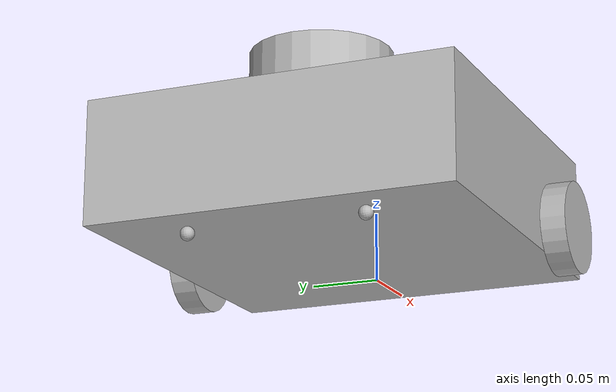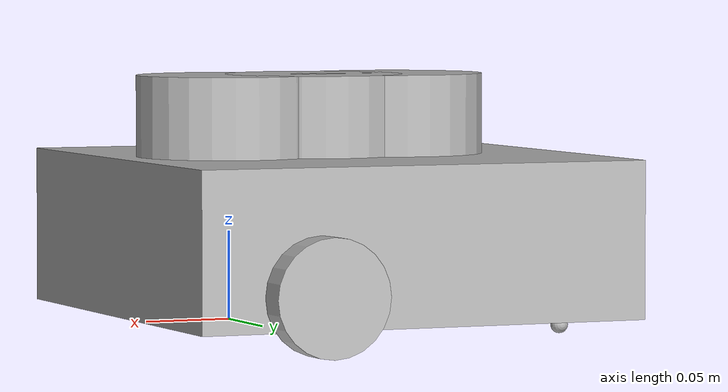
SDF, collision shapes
<?xml version="1.0" ?>
<sdf version="1.5">
  <model name="turtlebot3_waffle">
  <pose>0.0 0.0 0.0 0.0 0.0 0.0</pose>

    <link name="base_footprint"/>

    <link name="base_link">

      <inertial>
        <pose>-0.064 0 0.048 0 0 0</pose>
        <inertia>
          <ixx>4.2111447e-02</ixx>
          <ixy>0</ixy>
          <ixz>0</ixz>
          <iyy>4.2111447e-02</iyy>
          <iyz>0</iyz>
          <izz>7.5254874e-02</izz>
        </inertia>
        <mass>1.3729096e+00</mass>
      </inertial>

      <collision name="base_collision">
        <pose>-0.064 0 0.048 0 0 0</pose>
        <geometry>
          <box>
            <size>0.265 0.265 0.089</size>
          </box>
        </geometry>
      </collision>

      <visual name="base_visual">
        <pose>-0.064 0 0 0 0 0</pose>
        <geometry>
          <mesh>
            <uri>model://turtlebot3_common/meshes/waffle_base.dae</uri>
            <scale>0.001 0.001 0.001</scale>
          </mesh>
        </geometry>
      </visual>
    </link>

    <link name="imu_link">
      <sensor name="tb3_imu" type="imu">
        <always_on>true</always_on>
        <update_rate>200</update_rate>
        <imu>
          <angular_velocity>
            <x>
              <noise type="gaussian">
                <mean>0.0</mean>
                <stddev>2e-4</stddev>
              </noise>
            </x>
            <y>
              <noise type="gaussian">
                <mean>0.0</mean>
                <stddev>2e-4</stddev>
              </noise>
            </y>
            <z>
              <noise type="gaussian">
                <mean>0.0</mean>
                <stddev>2e-4</stddev>
              </noise>
            </z>
          </angular_velocity>
          <linear_acceleration>
            <x>
              <noise type="gaussian">
                <mean>0.0</mean>
                <stddev>1.7e-2</stddev>
              </noise>
            </x>
            <y>
              <noise type="gaussian">
                <mean>0.0</mean>
                <stddev>1.7e-2</stddev>
              </noise>
            </y>
            <z>
              <noise type="gaussian">
                <mean>0.0</mean>
                <stddev>1.7e-2</stddev>
              </noise>
            </z>
          </linear_acceleration>
        </imu>
        <plugin name="turtlebot3_imu" filename="libgazebo_ros_imu_sensor.so">
          <ros>
            <remapping>~/out:=imu</remapping>
          </ros>
        </plugin>
      </sensor>
    </link>

    <link name="base_scan">
      <inertial>
        <pose>-0.052 0 0.111 0 0 0</pose>
        <inertia>
          <ixx>0.001</ixx>
          <ixy>0.000</ixy>
          <ixz>0.000</ixz>
          <iyy>0.001</iyy>
          <iyz>0.000</iyz>
          <izz>0.001</izz>
        </inertia>
        <mass>0.114</mass>
      </inertial>

      <collision name="lidar_sensor_collision">
        <pose>-0.052 0 0.111 0 0 0</pose>
        <geometry>
          <cylinder>
            <radius>0.0508</radius>
            <length>0.055</length>
          </cylinder>
        </geometry>
      </collision>
    </link>

    <link name="base_scan_front">
        <inertial>
            <pose>0.002 0 0.111 0 0 0</pose>
            <inertia>
                <ixx>0.001</ixx>
                <ixy>0.000</ixy>
                <ixz>0.000</ixz>
                <iyy>0.001</iyy>
                <iyz>0.000</iyz>
                <izz>0.001</izz>
            </inertia>
            <mass>0.114</mass>
        </inertial>

        <collision name="lidar_sensor_collision_front">
            <pose>0.002 0 0.111 0 0 0</pose>
            <geometry>
                <cylinder>
                    <radius>0.0508</radius>
                    <length>0.055</length>
                </cylinder>
            </geometry>
        </collision>

        <visual name="lidar_sensor_visual_front">
            <pose>-0.014 0 0.121 0 0 0</pose>
            <geometry>
                <mesh>
                    <uri>model://turtlebot3_common/meshes/lds.dae</uri>
                    <scale>0.001 0.001 0.001</scale>
                </mesh>
            </geometry>
        </visual>

        <sensor name="hls_lfcd_lds_front" type="ray">
            <always_on>true</always_on>
            <visualize>false</visualize>
            <pose>-0.014 0 0.121 0 0 0</pose>
            <update_rate>5</update_rate>
            <ray>
                <scan>
                    <horizontal>
                        <samples>360</samples>
                        <resolution>1.000000</resolution>
                        <min_angle>0.000000</min_angle>
                        <max_angle>6.280000</max_angle>
                    </horizontal>
                </scan>
                <range>
                    <min>0.120000</min>
                    <max>10.0</max>
                    <resolution>0.015000</resolution>
                </range>
                <noise>
                    <type>gaussian</type>
                    <mean>0.0</mean>
                    <stddev>0.01</stddev>
                </noise>
            </ray>
            <plugin name="turtlebot3_laserscan_front" filename="libgazebo_ros_ray_sensor.so">
                <ros>
                    <remapping>~/out:=scan_front</remapping>
                </ros>
                <output_type>sensor_msgs/LaserScan</output_type>
                <frame_name>base_scan_front</frame_name>
            </plugin>
        </sensor>
    </link>

    <link name="base_scan_back">
        <inertial>
            <pose>-0.102 0 0.111 0 0 3.141592</pose>
            <inertia>
                <ixx>0.001</ixx>
                <ixy>0.000</ixy>
                <ixz>0.000</ixz>
                <iyy>0.001</iyy>
                <iyz>0.000</iyz>
                <izz>0.001</izz>
            </inertia>
            <mass>0.114</mass>
        </inertial>

        <collision name="lidar_sensor_collision_back">
            <pose>-0.102 0 0.111 0 0 3.141592</pose>
            <geometry>
                <cylinder>
                    <radius>0.0508</radius>
                    <length>0.055</length>
                </cylinder>
            </geometry>
        </collision>

        <visual name="lidar_sensor_visual_back">
            <pose>-0.114 0 0.121 0 0 3.141592</pose>
            <geometry>
                <mesh>
                    <uri>model://turtlebot3_common/meshes/lds.dae</uri>
                    <scale>0.001 0.001 0.001</scale>
                </mesh>
            </geometry>
        </visual>

        <sensor name="hls_lfcd_lds_back" type="ray">
            <always_on>true</always_on>
            <visualize>false</visualize>
            <pose>-0.114 0 0.121 0 0 3.141592</pose>
            <update_rate>5</update_rate>
            <ray>
                <scan>
                    <horizontal>
                        <samples>360</samples>
                        <resolution>1.000000</resolution>
                        <min_angle>0.000000</min_angle>
                        <max_angle>6.280000</max_angle>
                    </horizontal>
                </scan>
                <range>
                    <min>0.120000</min>
                    <max>10.0</max>
                    <resolution>0.015000</resolution>
                </range>
                <noise>
                    <type>gaussian</type>
                    <mean>0.0</mean>
                    <stddev>0.01</stddev>
                </noise>
            </ray>
            <plugin name="turtlebot3_laserscan_back" filename="libgazebo_ros_ray_sensor.so">
                <ros>
                    <remapping>~/out:=scan_back</remapping>
                </ros>
                <output_type>sensor_msgs/LaserScan</output_type>
                <frame_name>base_scan_back</frame_name>
            </plugin>
        </sensor>
    </link>

    <link name="wheel_left_link">

      <inertial>
        <pose>0.0 0.144 0.023 -1.57 0 0</pose>
        <inertia>
          <ixx>1.1175580e-05</ixx>
          <ixy>-4.2369783e-11</ixy>
          <ixz>-5.9381719e-09</ixz>
          <iyy>1.1192413e-05</iyy>
          <iyz>-1.4400107e-11</iyz>
          <izz>2.0712558e-05</izz>
        </inertia>
        <mass>0.1</mass>
      </inertial>

      <collision name="wheel_left_collision">
        <pose>0.0 0.144 0.023 -1.57 0 0</pose>
        <geometry>
          <cylinder>
            <radius>0.033</radius>
            <length>0.018</length>
          </cylinder>
        </geometry>
        <surface>
          <!-- This friction pamareter don't contain reliable data!! -->
          <friction>
            <ode>
              <mu>100000.0</mu>
              <mu2>100000.0</mu2>
              <fdir1>0 0 0</fdir1>
              <slip1>0.0</slip1>
              <slip2>0.0</slip2>
            </ode>
          </friction>
          <contact>
            <ode>
              <soft_cfm>0</soft_cfm>
              <soft_erp>0.2</soft_erp>
              <kp>1e+5</kp>
              <kd>1</kd>
              <max_vel>0.01</max_vel>
              <min_depth>0.001</min_depth>
            </ode>
          </contact>
        </surface>
      </collision>

      <visual name="wheel_left_visual">
        <pose>0.0 0.144 0.023 0 0 0</pose>
        <geometry>
          <mesh>
            <uri>model://turtlebot3_common/meshes/tire.dae</uri>
            <scale>0.001 0.001 0.001</scale>
          </mesh>
        </geometry>
      </visual>
    </link>

    <link name="wheel_right_link">

      <inertial>
        <pose>0.0 -0.144 0.023 -1.57 0 0</pose>
        <inertia>
          <ixx>1.1175580e-05</ixx>
          <ixy>-4.2369783e-11</ixy>
          <ixz>-5.9381719e-09</ixz>
          <iyy>1.1192413e-05</iyy>
          <iyz>-1.4400107e-11</iyz>
          <izz>2.0712558e-05</izz>
        </inertia>
        <mass>0.1</mass>
      </inertial>

      <collision name="wheel_right_collision">
        <pose>0.0 -0.144 0.023 -1.57 0 0</pose>
        <geometry>
          <cylinder>
            <radius>0.033</radius>
            <length>0.018</length>
          </cylinder>
        </geometry>
        <surface>
          <!-- This friction pamareter don't contain reliable data!! -->
          <friction>
            <ode>
              <mu>100000.0</mu>
              <mu2>100000.0</mu2>
              <fdir1>0 0 0</fdir1>
              <slip1>0.0</slip1>
              <slip2>0.0</slip2>
            </ode>
          </friction>
          <contact>
            <ode>
              <soft_cfm>0</soft_cfm>
              <soft_erp>0.2</soft_erp>
              <kp>1e+5</kp>
              <kd>1</kd>
              <max_vel>0.01</max_vel>
              <min_depth>0.001</min_depth>
            </ode>
          </contact>
        </surface>
      </collision>

      <visual name="wheel_right_visual">
        <pose>0.0 -0.144 0.023 0 0 0</pose>
        <geometry>
          <mesh>
            <uri>model://turtlebot3_common/meshes/tire.dae</uri>
            <scale>0.001 0.001 0.001</scale>
          </mesh>
        </geometry>
      </visual>
    </link>

    <link name='caster_back_right_link'>
      <pose>-0.177 -0.064 -0.004 -1.57 0 0</pose>
      <inertial>
        <mass>0.001</mass>
        <inertia>
          <ixx>0.00001</ixx>
          <ixy>0.000</ixy>
          <ixz>0.000</ixz>
          <iyy>0.00001</iyy>
          <iyz>0.000</iyz>
          <izz>0.00001</izz>
        </inertia>
      </inertial>
      <collision name='collision'>
        <geometry>
          <sphere>
            <radius>0.005000</radius>
          </sphere>
        </geometry>
        <surface>
          <contact>
            <ode>
              <soft_cfm>0</soft_cfm>
              <soft_erp>0.2</soft_erp>
              <kp>1e+5</kp>
              <kd>1</kd>
              <max_vel>0.01</max_vel>
              <min_depth>0.001</min_depth>
            </ode>
          </contact>
        </surface>
      </collision>
    </link>

    <link name='caster_back_left_link'>
      <pose>-0.177 0.064 -0.004 -1.57 0 0</pose>
      <inertial>
        <mass>0.001</mass>
        <inertia>
          <ixx>0.00001</ixx>
          <ixy>0.000</ixy>
          <ixz>0.000</ixz>
          <iyy>0.00001</iyy>
          <iyz>0.000</iyz>
          <izz>0.00001</izz>
        </inertia>
      </inertial>
      <collision name='collision'>
        <geometry>
          <sphere>
            <radius>0.005000</radius>
          </sphere>
        </geometry>
        <surface>
          <contact>
            <ode>
              <soft_cfm>0</soft_cfm>
              <soft_erp>0.2</soft_erp>
              <kp>1e+5</kp>
              <kd>1</kd>
              <max_vel>0.01</max_vel>
              <min_depth>0.001</min_depth>
            </ode>
          </contact>
        </surface>
      </collision>
    </link>

    <link name="camera_link"/>

    <link name="camera_rgb_frame">
      <inertial>
        <pose>0.069 0.0 0.107 0 0 0</pose>
        <inertia>
          <ixx>0.001</ixx>
          <ixy>0.000</ixy>
          <ixz>0.000</ixz>
          <iyy>0.001</iyy>
          <iyz>0.000</iyz>
          <izz>0.001</izz>
        </inertia>
        <mass>0.035</mass>
      </inertial>

      <pose>0.069 0.0 0.107 0 0 0</pose>
      <sensor name="depth_camera" type="depth">
        <always_on>true</always_on>
        <visualize>true</visualize>
        <update_rate>5</update_rate>
        <camera name="camera">
          <horizontal_fov>1.02974</horizontal_fov>
          <image>
            <width>640</width>
            <height>480</height>
            <format>R8G8B8</format>
          </image>
          <clip>
            <near>0.02</near>
            <far>10</far>
          </clip>
          <noise>
            <type>gaussian</type>
            <!-- Noise is sampled independently per pixel on each frame.
                That pixel's noise value is added to each of its color
                  channels, which at that point lie in the range [0,1]. -->
            <mean>0.0</mean>
            <stddev>0.007</stddev>
          </noise>
        </camera>
        <plugin name="depth_camera_controller" filename="libgazebo_ros_camera.so">
          <camera_name>depth_camera</camera_name>
          <frame_name>camera_depth_frame</frame_name>
          <hack_baseline>0</hack_baseline>
          <min_depth>0.001</min_depth>
        </plugin>
      </sensor>
    </link>

    <link name="camera_rear_rgb_frame">
      <inertial>
        <pose>-0.190 0.0 0.107 0 0 3.141592</pose>
        <inertia>
          <ixx>0.001</ixx>
          <ixy>0.000</ixy>
          <ixz>0.000</ixz>
          <iyy>0.001</iyy>
          <iyz>0.000</iyz>
          <izz>0.001</izz>
        </inertia>
        <mass>0.035</mass>
      </inertial>

      <pose>-0.190 0.0 0.107 0 0 3.141592</pose>
      <sensor name="depth_rear_camera" type="depth">
        <always_on>true</always_on>
        <visualize>true</visualize>
        <update_rate>5</update_rate>
        <camera name="camera">
          <horizontal_fov>1.02974</horizontal_fov>
          <image>
            <width>640</width>
            <height>480</height>
            <format>R8G8B8</format>
          </image>
          <clip>
            <near>0.02</near>
            <far>10</far>
          </clip>
          <noise>
            <type>gaussian</type>
            <!-- Noise is sampled independently per pixel on each frame.
                That pixel's noise value is added to each of its color
                  channels, which at that point lie in the range [0,1]. -->
            <mean>0.0</mean>
            <stddev>0.007</stddev>
          </noise>
        </camera>
        <plugin name="depth_rear_camera_controller" filename="libgazebo_ros_camera.so">
          <camera_name>depth_rear_camera</camera_name>
          <frame_name>camera_rear_depth_frame</frame_name>
          <hack_baseline>0</hack_baseline>
          <min_depth>0.001</min_depth>
        </plugin>
      </sensor>
    </link>

    <joint name="base_joint" type="fixed">
      <parent>base_footprint</parent>
      <child>base_link</child>
      <pose>0.0 0.0 0.010 0 0 0</pose>
    </joint>

    <joint name="wheel_left_joint" type="revolute">
      <parent>base_link</parent>
      <child>wheel_left_link</child>
      <pose>0.0 0.144 0.023 -1.57 0 0</pose>
      <axis>
        <xyz>0 0 1</xyz>
      </axis>
    </joint>

    <joint name="wheel_right_joint" type="revolute">
      <parent>base_link</parent>
      <child>wheel_right_link</child>
      <pose>0.0 -0.144 0.023 -1.57 0 0</pose>
      <axis>
        <xyz>0 0 1</xyz>
      </axis>
    </joint>

    <joint name='caster_back_right_joint' type='ball'>
      <parent>base_link</parent>
      <child>caster_back_right_link</child>
    </joint>

    <joint name='caster_back_left_joint' type='ball'>
      <parent>base_link</parent>
      <child>caster_back_left_link</child>
    </joint>

    <joint name="imu_joint" type="fixed">
      <parent>base_link</parent>
      <child>imu_link</child>
      <pose>-0.032 0 0.068 0 0 0</pose>
      <axis>
        <xyz>0 0 1</xyz>
      </axis>
    </joint>

    <joint name="lidar_joint" type="fixed">
      <parent>base_link</parent>
      <child>base_scan</child>
      <pose>0.0 0 0.121 0 0 0</pose>
      <axis>
        <xyz>0 0 1</xyz>
      </axis>
    </joint>

    <joint name="lidar_front_joint" type="fixed">
      <parent>base_scan</parent>
      <child>base_scan_front</child>
      <pose> 0.0 0 0 0 0</pose>
      <axis>
        <xyz>0 0 1</xyz>
      </axis>
    </joint>

    <joint name="lidar_back_joint" type="fixed">
      <parent>base_scan</parent>
      <child>base_scan_back</child>
      <pose>-0.10 0 0 0 0 3.141592</pose>
      <axis>
        <xyz>0 0 1</xyz>
      </axis>
    </joint>

    <joint name="camera_joint" type="fixed">
      <parent>base_link</parent>
      <child>camera_link</child>
      <pose>0.064 0.0 0.094 0 0 0</pose>
      <axis>
        <xyz>0 0 1</xyz>
      </axis>
    </joint>

    <joint name="camera_rgb_joint" type="fixed">
      <parent>camera_link</parent>
      <child>camera_rgb_frame</child>
      <pose>0.0 0.0 0.0 0 0 0</pose>
      <axis>
        <xyz>0 0 1</xyz>
      </axis>
    </joint>

    <link name="camera_rear_link"/>

    <joint name="camera_rear_joint" type="fixed">
      <parent>base_link</parent>
      <child>camera_rear_link</child>
      <pose>-0.190 0.0 0.094 0 0 3.141592</pose>
      <axis>
        <xyz>0 0 1</xyz>
      </axis>
    </joint>

    <joint name="camera_rear_rgb_joint" type="fixed">
      <parent>camera_rear_link</parent>
      <child>camera_rear_rgb_frame</child>
      <pose>0.0 0.0 0.0 0 0 0</pose>
      <axis>
        <xyz>0 0 1</xyz>
      </axis>
    </joint>

    <plugin name="turtlebot3_diff_drive" filename="libgazebo_ros_diff_drive.so">

      <ros>
      </ros>

      <update_rate>60</update_rate>

      <left_joint>wheel_left_joint</left_joint>
      <right_joint>wheel_right_joint</right_joint>

      <wheel_separation>0.287</wheel_separation>
      <wheel_diameter>0.066</wheel_diameter>

      <max_wheel_torque>20</max_wheel_torque>
      <max_wheel_acceleration>1.0</max_wheel_acceleration>

      <command_topic>cmd_vel</command_topic>

      <publish_odom>true</publish_odom>
      <publish_odom_tf>true</publish_odom_tf>
      <publish_wheel_tf>false</publish_wheel_tf>

      <odometry_topic>odom</odometry_topic>
      <odometry_frame>odom</odometry_frame>
      <robot_base_frame>base_footprint</robot_base_frame>

    </plugin>

    <plugin name="turtlebot3_joint_state" filename="libgazebo_ros_joint_state_publisher.so">
      <ros>
        <remapping>~/out:=joint_states</remapping>
      </ros>
      <update_rate>60</update_rate>
      <joint_name>wheel_left_joint</joint_name>
      <joint_name>wheel_right_joint</joint_name>
    </plugin>

  </model>
</sdf>
